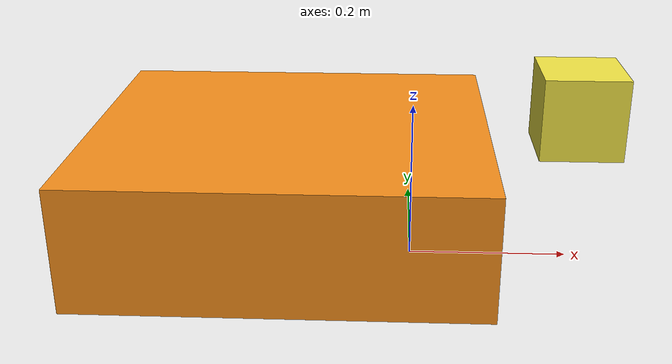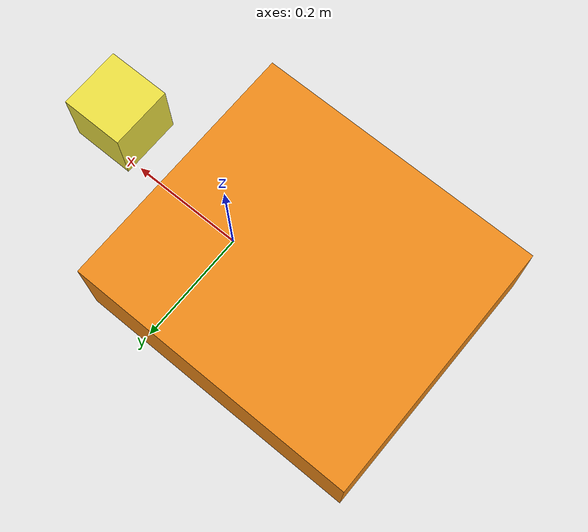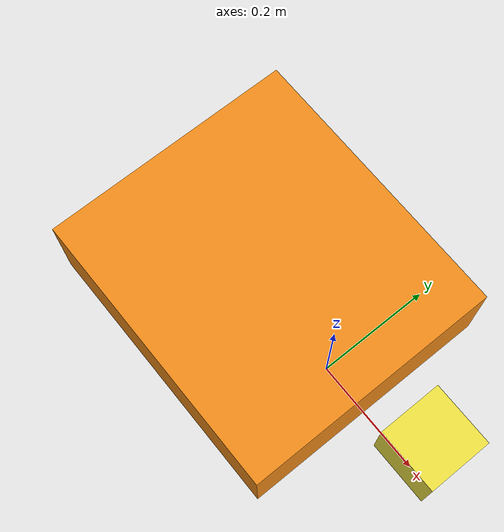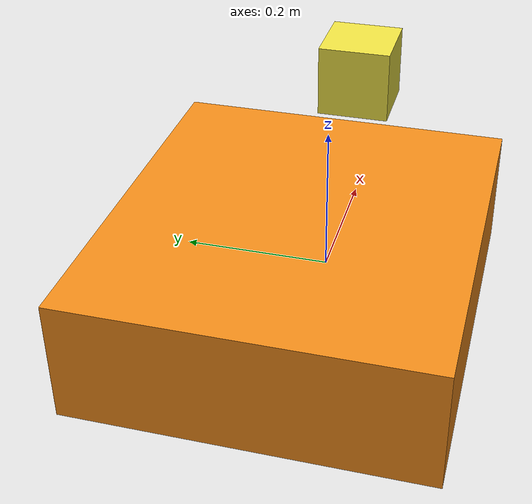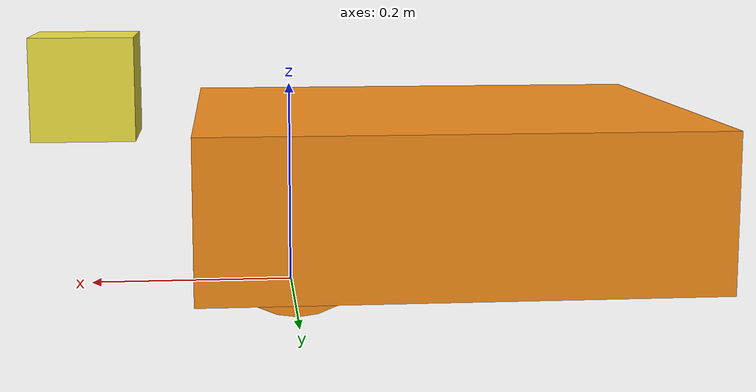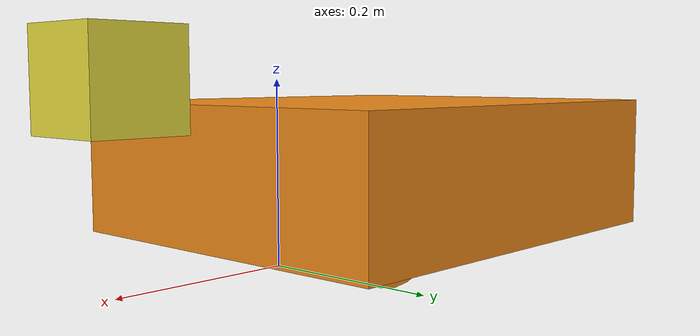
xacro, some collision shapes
<?xml version="1.0"?>

<robot name="orne_gamma" xmlns:xacro="http://www.ros.org/wiki/xacro">

<xacro:include filename="$(find icart_mini_description)/urdf/icart_mini.xacro"/>

s

<xacro:include filename="$(find icart_mini_description)/urdf/sensors/hokuyo.urdf.xacro"/>
<xacro:sensor_hokuyo name="hokuyo" parent="base_link">
    <origin xyz="0.2 0 0.2" rpy="0 0 0"/>
</xacro:sensor_hokuyo>

</robot>

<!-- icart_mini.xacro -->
<!-- Revolute-Revolute Manipulator -->
<robot name="icart_mini" xmlns:xacro="http://www.ros.org/wiki/xacro">
  <!-- Constants for robot dimensions -->
  <xacro:property name="PI" value="3.1415926535897931"/>

  <!-- Import Rviz colors -->
  <xacro:include filename="$(find icart_mini_description)/urdf/materials.xacro" />
  <xacro:include filename="$(find icart_mini_description)/urdf/icart_mini.gazebo"/>

  <!-- Base Link -->
  <link name="base_link">
    <collision>
      <origin xyz="-0.15 0 0.1" rpy="0 0 0"/>
      <geometry>
	    <box size=".485 .43 .15"/>
      </geometry>
    </collision>

    <visual>
      <origin xyz="-0.15 0 0.1" rpy="0 0 0"/>
      <geometry>
	    <box size=".485 .43 .15"/>
      </geometry>
      <material name="orange"/>
    </visual>

    <collision name="collision">
      <origin xyz="-0.325 0.0 0.05" rpy="0 1.5707 1.5707"/>
      <geometry>
        <cylinder  length="0.03" radius="0.04625"/>
      </geometry>
    </collision>
    <visual name="visual">
      <origin xyz="-0.325 0.0 0.05" rpy="0 1.5707 1.5707"/>
      <geometry>
        <cylinder  length="0.03" radius="0.04625"/>
      </geometry>
    </visual>

    <inertial>
       <mass value="20" />
       <origin xyz="-0.08 0 0" rpy="0 0 0"/>
       <inertia ixx="1" ixy="0" ixz="0" iyy="1" iyz="0" izz="1" />
    </inertial>
  </link>

  <link name="left_wheel">
    <collision name="collision">
      <origin xyz="0 0.0 0" rpy="0 1.5707 1.5707"/>
      <geometry>
         <cylinder  length="0.03" radius="0.0725"/>
      </geometry>
    </collision>
    <visual name="visual">
      <origin xyz="0 0.0 0" rpy="0 1.5707 1.5707"/>
      <geometry>
        <cylinder  length="0.03" radius="0.0725"/>
      </geometry>
    </visual>
    <inertial>
      <mass value="1" />
      <origin xyz="0 0.0 0"/>
      <inertia ixx="0.1" ixy="0" ixz="0" iyy="0.1" iyz="0" izz="0.1" />
    </inertial>
  </link>

  <joint type="revolute" name="left_wheel_hinge">
    <origin xyz="0 0.15 0.075" rpy="0 0 0"/>
    <child link="left_wheel">left_wheel</child>
    <parent link="base_link">base_link</parent>
    <axis xyz="0 1 0"/>
    <limit effort="100" velocity="100.0"  lower="-5000" upper="5000" />
  </joint>

  <link name="right_wheel">
    <collision name="collision">
      <origin xyz="0 0.0 0" rpy="0 1.5707 1.5707"/>
      <geometry>
         <cylinder  length="0.03" radius="0.0725"/>
      </geometry>
    </collision>
    <visual name="visual">
      <origin xyz="0 0.0 0" rpy="0 1.5707 1.5707"/>
      <geometry>
        <cylinder  length="0.03" radius="0.0725"/>
      </geometry>
    </visual>
    <inertial>
      <mass value="1" />
      <origin xyz="0 0.0 0"/>
      <inertia ixx="0.1" ixy="0" ixz="0" iyy="0.1" iyz="0" izz="0.1" />
    </inertial>
  </link>

  <joint type="revolute" name="right_wheel_hinge">
    <origin xyz="0 -0.15 0.075" rpy="0 0 0"/>
    <child link="right_wheel">right_wheel</child>
    <parent link="base_link">base_link</parent>
    <axis xyz="0 1 0"/>
    <limit effort="100" velocity="100.0"  lower="-5000" upper="5000" />
  </joint>

  <transmission name="tran1">
    <type>transmission_interface/SimpleTransmission</type>
    <joint name="left_wheel_hinge">
      <hardwareInterface>VelocityJointInterface</hardwareInterface>
    </joint>
    <actuator name="left_motor">
      <hardwareInterface>VelocityJointInterface</hardwareInterface>
      <mechanicalReduction>1</mechanicalReduction>
    </actuator>
  </transmission>

  <transmission name="tran2">
    <type>transmission_interface/SimpleTransmission</type>
    <joint name="right_wheel_hinge">
      <hardwareInterface>VelocityJointInterface</hardwareInterface>
    </joint>
    <actuator name="right_motor">
      <hardwareInterface>VelocityJointInterface</hardwareInterface>
      <mechanicalReduction>1</mechanicalReduction>
    </actuator>
  </transmission>
</robot>

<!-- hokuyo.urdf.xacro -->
<robot name="sensor_hokuyo" xmlns:xacro="http://ros.org/wiki/xacro"
                              xmlns:controller="http://playerstage.sourceforge.net/gazebo/xmlschema/#controller"
                              xmlns:interface="http://playerstage.sourceforge.net/gazebo/xmlschema/#interface">

  <xacro:property name="hokuyo_link" value="0.1" /> <!-- Size of square 'hokuyo' box -->
  <xacro:macro name="sensor_hokuyo" params="name parent *origin">
    <joint name="${name}_joint" type="fixed">
      <axis xyz="0 1 0"/>
      <xacro:insert_block name="origin"/>
      <parent link="${parent}"/>
      <child link="${name}_link"/>
    </joint>

    <link name="${name}_link">
      <collision>
        <origin xyz="0 0 0" rpy="0 0 0"/>
        <geometry>
            <box size="${hokuyo_link} ${hokuyo_link} ${hokuyo_link}"/>
        </geometry>
      </collision>

      <visual>
        <origin xyz="0 0 0" rpy="0 0 0"/>
        <geometry>
          <mesh filename="package://icart_mini_description/meshes/hokuyo.dae"/>
        </geometry>
      </visual>

      <inertial>
        <mass value="0.0001"/>
        <origin xyz="0 0 0" rpy="0 0 0"/>
        <inertia ixx="0.0001" ixy="0" ixz="0" iyy="0.0001" iyz="0" izz="0.0001"/>
      </inertial>
    </link>

  </xacro:macro>

</robot>
